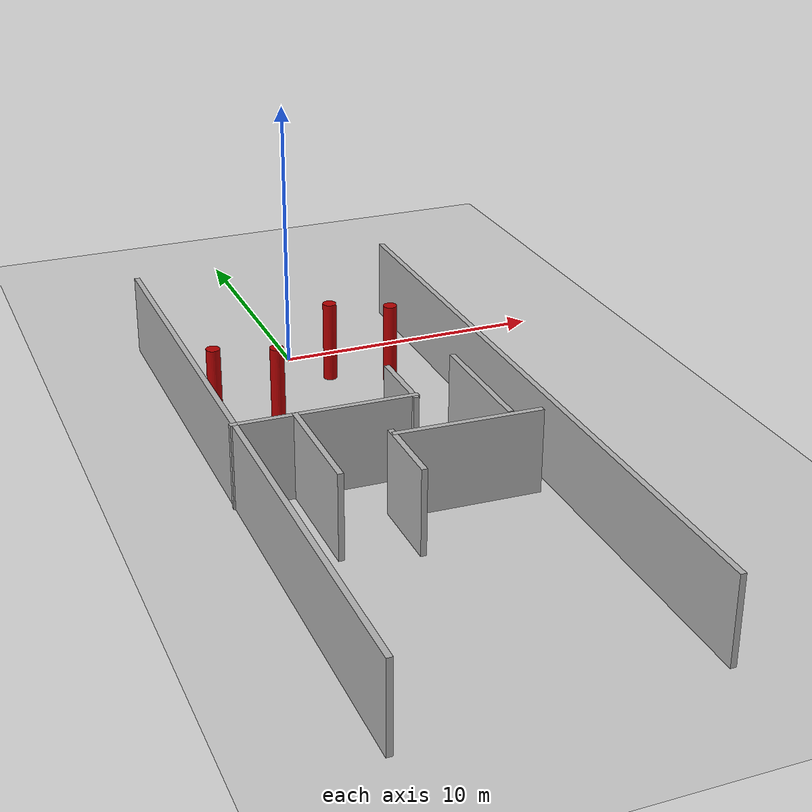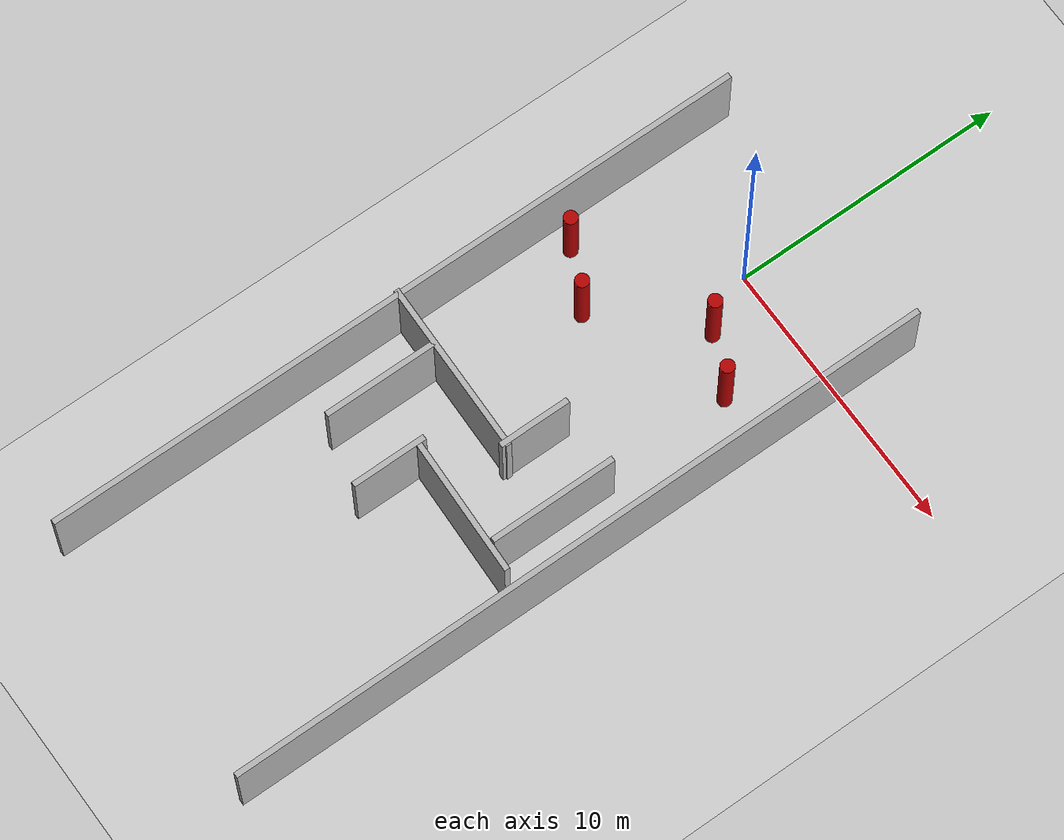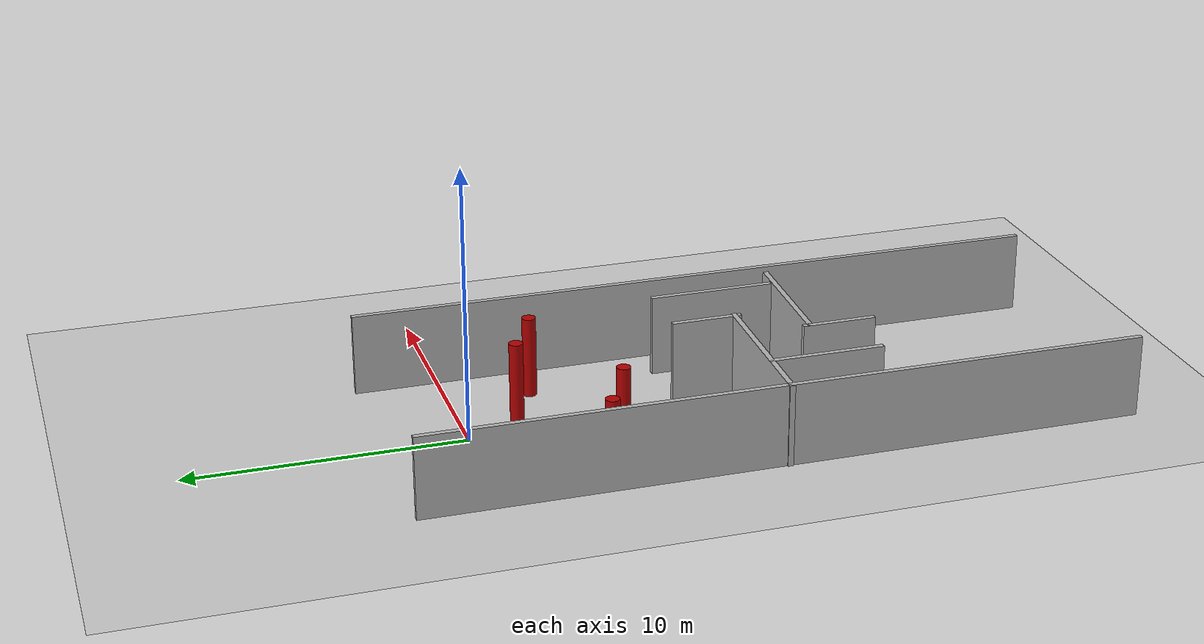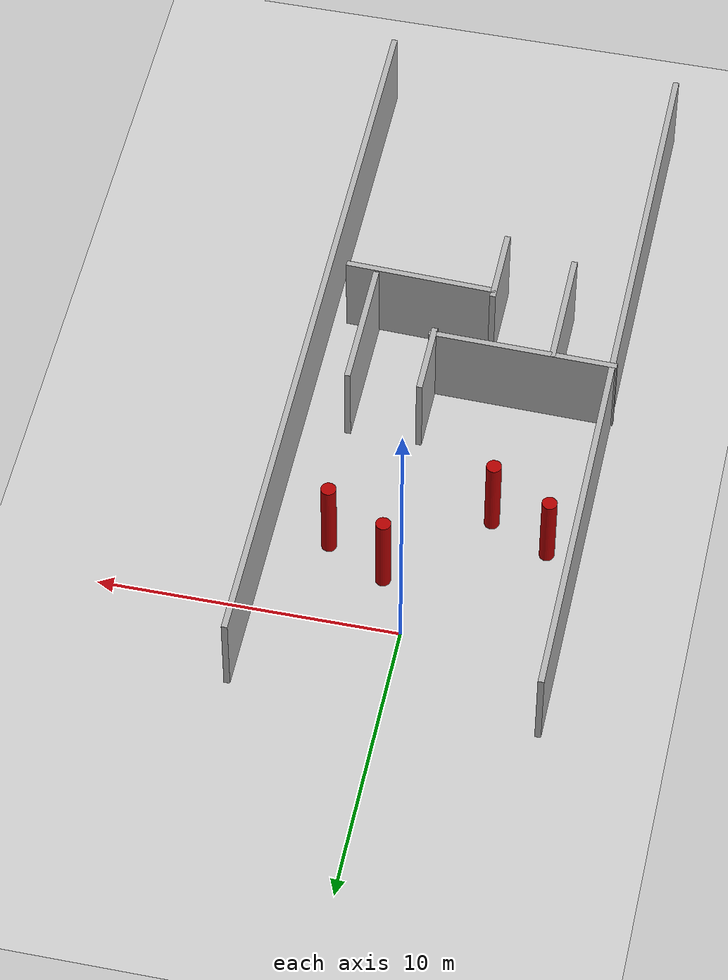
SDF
<sdf version="1.6">
 <world name="default">
  <light name="sun" type="directional">
   <pose>0 0 10 0 -0 0</pose>
   <diffuse>0.8 0.8 0.8 1</diffuse>
   <specular>0.2 0.2 0.2 1</specular>
   <attenuation>
    <range>1000</range>
    <constant>0.9</constant>
    <linear>0.01</linear>
    <quadratic>0.001</quadratic>
   </attenuation>
   <direction>-0.5 0.1 -0.9</direction>
  </light>
  <model name="ground_plane">
   <static>1</static>
   <link name="link">
    <collision name="collision">
     <geometry><plane><normal>0 0 1</normal><size>100 100</size></plane></geometry>
     <surface><friction><ode><mu>100</mu><mu2>50</mu2></ode></friction></surface>
    </collision>
    <visual name="visual">
     <cast_shadows>0</cast_shadows>
     <geometry><plane><normal>0 0 1</normal><size>100 100</size></plane></geometry>
     <material>
      <script><name>Gazebo/Grey</name><uri>file://media/materials/scripts/gazebo.material</uri></script>
     </material>
    </visual>
    <velocity_decay><linear>0</linear><angular>0</angular></velocity_decay>
   </link>
  </model>
  <physics name="default_physics" default="0" type="ode">
   <ode>
    <solver>
     <type>quick</type>
     <iters>10</iters>
     <sor>1.3</sor>
     <use_dynamic_moi_rescaling>0</use_dynamic_moi_rescaling>
    </solver>
    <constraints>
     <cfm>0</cfm>
     <erp>0.2</erp>
     <contact_max_correcting_vel>100</contact_max_correcting_vel>
     <contact_surface_layer>0.001</contact_surface_layer>
    </constraints>
   </ode>
   <max_step_size>0.004</max_step_size>
   <real_time_factor>1</real_time_factor>
   <real_time_update_rate>250</real_time_update_rate>
  </physics>
  <scene><ambient>0.4 0.4 0.4 1</ambient><background>0.7 0.7 0.7 1</background><shadows>1</shadows></scene>
  <spherical_coordinates>
   <surface_model>EARTH_WGS84</surface_model>
   <latitude_deg>0</latitude_deg>
   <longitude_deg>0</longitude_deg>
   <elevation>0</elevation>
   <heading_deg>0</heading_deg>
  </spherical_coordinates>
  <gravity>0 0 -9.8</gravity>
  <magnetic_field>6e-06 2.3e-05 -4.2e-05</magnetic_field>
  <atmosphere type="adiabatic"/>
  <model name="obstacle1">
   <link name="link">
    <inertial>
     <mass>1</mass>
     <inertia>
      <ixx>0.166667</ixx>
      <ixy>0</ixy>
      <ixz>0</ixz>
      <iyy>0.166667</iyy>
      <iyz>0</iyz>
      <izz>0.166667</izz>
     </inertia>
    </inertial>
    <visual name="visual">
     <geometry><box><size>0.2 4.6 3</size></box></geometry>
     <material>
      <script><name>baowen</name><uri>model://rover/materials/scripts/baowen.material</uri></script>
      <ambient>0.3 0.3 0.3 1</ambient>
      <diffuse>0.7 0.7 0.7 1</diffuse>
      <specular>0.01 0.01 0.01 1</specular>
      <emissive>0 0 0 1</emissive>
      <shader type="vertex"><normal_map>__default__</normal_map></shader>
     </material>
    </visual>
    <collision name="collision">
     <geometry><box><size>0.2 4.6 3</size></box></geometry>
     <surface>
      <friction>
       <ode><mu>1</mu><mu2>1</mu2><fdir1>0 0 0</fdir1><slip1>0</slip1><slip2>0</slip2></ode>
       <torsional>
        <coefficient>1</coefficient>
        <patch_radius>0</patch_radius>
        <surface_radius>0</surface_radius>
        <use_patch_radius>1</use_patch_radius>
        <ode><slip>0</slip></ode>
       </torsional>
      </friction>
      <bounce><restitution_coefficient>0</restitution_coefficient><threshold>1e+06</threshold></bounce>
      <contact>
       <collide_without_contact>0</collide_without_contact>
       <collide_without_contact_bitmask>1</collide_without_contact_bitmask>
       <collide_bitmask>1</collide_bitmask>
       <ode>
        <soft_cfm>0</soft_cfm>
        <soft_erp>0.2</soft_erp>
        <kp>1e+13</kp>
        <kd>1</kd>
        <max_vel>0.01</max_vel>
        <min_depth>0</min_depth>
       </ode>
       <bullet>
        <split_impulse>1</split_impulse>
        <split_impulse_penetration_threshold>-0.01</split_impulse_penetration_threshold>
        <soft_cfm>0</soft_cfm>
        <soft_erp>0.2</soft_erp>
        <kp>1e+13</kp>
        <kd>1</kd>
       </bullet>
      </contact>
     </surface>
    </collision>
   </link>
   <static>1</static>
   <pose>3.4 -10 1.5 0 -0 0</pose>
  </model>
  <model name="obstacle2">
   <link name="link">
    <inertial>
     <mass>1</mass>
     <inertia>
      <ixx>0.166667</ixx>
      <ixy>0</ixy>
      <ixz>0</ixz>
      <iyy>0.166667</iyy>
      <iyz>0</iyz>
      <izz>0.166667</izz>
     </inertia>
    </inertial>
    <visual name="visual">
     <geometry><box><size>0.2 5.10204 3</size></box></geometry>
     <material>
      <script><name>baowen</name><uri>model://rover/materials/scripts/baowen.material</uri></script>
      <ambient>0.3 0.3 0.3 1</ambient>
      <diffuse>0.7 0.7 0.7 1</diffuse>
      <specular>0.01 0.01 0.01 1</specular>
      <emissive>0 0 0 1</emissive>
      <shader type="vertex"><normal_map>__default__</normal_map></shader>
     </material>
    </visual>
    <collision name="collision">
     <geometry><box><size>0.2 5.10204 3</size></box></geometry>
     <surface>
      <friction>
       <ode><mu>1</mu><mu2>1</mu2><fdir1>0 0 0</fdir1><slip1>0</slip1><slip2>0</slip2></ode>
       <torsional>
        <coefficient>1</coefficient>
        <patch_radius>0</patch_radius>
        <surface_radius>0</surface_radius>
        <use_patch_radius>1</use_patch_radius>
        <ode><slip>0</slip></ode>
       </torsional>
      </friction>
      <bounce><restitution_coefficient>0</restitution_coefficient><threshold>1e+06</threshold></bounce>
      <contact>
       <collide_without_contact>0</collide_without_contact>
       <collide_without_contact_bitmask>1</collide_without_contact_bitmask>
       <collide_bitmask>1</collide_bitmask>
       <ode>
        <soft_cfm>0</soft_cfm>
        <soft_erp>0.2</soft_erp>
        <kp>1e+13</kp>
        <kd>1</kd>
        <max_vel>0.01</max_vel>
        <min_depth>0</min_depth>
       </ode>
       <bullet>
        <split_impulse>1</split_impulse>
        <split_impulse_penetration_threshold>-0.01</split_impulse_penetration_threshold>
        <soft_cfm>0</soft_cfm>
        <soft_erp>0.2</soft_erp>
        <kp>1e+13</kp>
        <kd>1</kd>
       </bullet>
      </contact>
     </surface>
    </collision>
   </link>
   <static>1</static>
   <pose>1.9 -12.4 1.5 0 -0 1.53692</pose>
  </model>
  <model name="obstacle3">
   <link name="link">
    <inertial>
     <mass>1</mass>
     <inertia>
      <ixx>0.166667</ixx>
      <ixy>0</ixy>
      <ixz>0</ixz>
      <iyy>0.166667</iyy>
      <iyz>0</iyz>
      <izz>0.166667</izz>
     </inertia>
    </inertial>
    <visual name="visual">
     <geometry><box><size>0.2 2.71566 3</size></box></geometry>
     <material>
      <script><name>baowen</name><uri>model://rover/materials/scripts/baowen.material</uri></script>
      <ambient>0.3 0.3 0.3 1</ambient>
      <diffuse>0.7 0.7 0.7 1</diffuse>
      <specular>0.01 0.01 0.01 1</specular>
      <emissive>0 0 0 1</emissive>
      <shader type="vertex"><normal_map>__default__</normal_map></shader>
     </material>
    </visual>
    <collision name="collision">
     <geometry><box><size>0.2 2.71566 3</size></box></geometry>
     <surface>
      <friction>
       <ode><mu>1</mu><mu2>1</mu2><fdir1>0 0 0</fdir1><slip1>0</slip1><slip2>0</slip2></ode>
       <torsional>
        <coefficient>1</coefficient>
        <patch_radius>0</patch_radius>
        <surface_radius>0</surface_radius>
        <use_patch_radius>1</use_patch_radius>
        <ode><slip>0</slip></ode>
       </torsional>
      </friction>
      <bounce><restitution_coefficient>0</restitution_coefficient><threshold>1e+06</threshold></bounce>
      <contact>
       <collide_without_contact>0</collide_without_contact>
       <collide_without_contact_bitmask>1</collide_without_contact_bitmask>
       <collide_bitmask>1</collide_bitmask>
       <ode>
        <soft_cfm>0</soft_cfm>
        <soft_erp>0.2</soft_erp>
        <kp>1e+13</kp>
        <kd>1</kd>
        <max_vel>0.01</max_vel>
        <min_depth>0</min_depth>
       </ode>
       <bullet>
        <split_impulse>1</split_impulse>
        <split_impulse_penetration_threshold>-0.01</split_impulse_penetration_threshold>
        <soft_cfm>0</soft_cfm>
        <soft_erp>0.2</soft_erp>
        <kp>1e+13</kp>
        <kd>1</kd>
       </bullet>
      </contact>
     </surface>
    </collision>
   </link>
   <static>1</static>
   <pose>-0.6 -13.4 1.5 0 -0 0</pose>
  </model>
  <model name="obstacle4">
   <link name="link">
    <inertial>
     <mass>1</mass>
     <inertia>
      <ixx>0.166667</ixx>
      <ixy>0</ixy>
      <ixz>0</ixz>
      <iyy>0.166667</iyy>
      <iyz>0</iyz>
      <izz>0.166667</izz>
     </inertia>
    </inertial>
    <visual name="visual">
     <geometry><box><size>0.2 6.31579 3</size></box></geometry>
     <material>
      <script><name>baowen</name><uri>model://rover/materials/scripts/baowen.material</uri></script>
      <ambient>0.3 0.3 0.3 1</ambient>
      <diffuse>0.7 0.7 0.7 1</diffuse>
      <specular>0.01 0.01 0.01 1</specular>
      <emissive>0 0 0 1</emissive>
      <shader type="vertex"><normal_map>__default__</normal_map></shader>
     </material>
    </visual>
    <collision name="collision">
     <geometry><box><size>0.2 6.31579 3</size></box></geometry>
     <surface>
      <friction>
       <ode><mu>1</mu><mu2>1</mu2><fdir1>0 0 0</fdir1><slip1>0</slip1><slip2>0</slip2></ode>
       <torsional>
        <coefficient>1</coefficient>
        <patch_radius>0</patch_radius>
        <surface_radius>0</surface_radius>
        <use_patch_radius>1</use_patch_radius>
        <ode><slip>0</slip></ode>
       </torsional>
      </friction>
      <bounce><restitution_coefficient>0</restitution_coefficient><threshold>1e+06</threshold></bounce>
      <contact>
       <collide_without_contact>0</collide_without_contact>
       <collide_without_contact_bitmask>1</collide_without_contact_bitmask>
       <collide_bitmask>1</collide_bitmask>
       <ode>
        <soft_cfm>0</soft_cfm>
        <soft_erp>0.2</soft_erp>
        <kp>1e+13</kp>
        <kd>1</kd>
        <max_vel>0.01</max_vel>
        <min_depth>0</min_depth>
       </ode>
       <bullet>
        <split_impulse>1</split_impulse>
        <split_impulse_penetration_threshold>-0.01</split_impulse_penetration_threshold>
        <soft_cfm>0</soft_cfm>
        <soft_erp>0.2</soft_erp>
        <kp>1e+13</kp>
        <kd>1</kd>
       </bullet>
      </contact>
     </surface>
    </collision>
   </link>
   <static>1</static>
   <pose>-2 -10 1.5 0 -0 1.54887</pose>
  </model>
  <model name="obstacle5">
   <link name="link">
    <inertial>
     <mass>1</mass>
     <inertia>
      <ixx>0.166667</ixx>
      <ixy>0</ixy>
      <ixz>0</ixz>
      <iyy>0.166667</iyy>
      <iyz>0</iyz>
      <izz>0.166667</izz>
     </inertia>
    </inertial>
    <visual name="visual">
     <geometry><box><size>0.2 2.58889 3</size></box></geometry>
     <material>
      <script><name>baowen</name><uri>model://rover/materials/scripts/baowen.material</uri></script>
      <ambient>0.3 0.3 0.3 1</ambient>
      <diffuse>0.7 0.7 0.7 1</diffuse>
      <specular>0.01 0.01 0.01 1</specular>
      <emissive>0 0 0 1</emissive>
      <shader type="vertex"><normal_map>__default__</normal_map></shader>
     </material>
    </visual>
    <collision name="collision">
     <geometry><box><size>0.2 2.58889 3</size></box></geometry>
     <surface>
      <friction>
       <ode><mu>1</mu><mu2>1</mu2><fdir1>0 0 0</fdir1><slip1>0</slip1><slip2>0</slip2></ode>
       <torsional>
        <coefficient>1</coefficient>
        <patch_radius>0</patch_radius>
        <surface_radius>0</surface_radius>
        <use_patch_radius>1</use_patch_radius>
        <ode><slip>0</slip></ode>
       </torsional>
      </friction>
      <bounce><restitution_coefficient>0</restitution_coefficient><threshold>1e+06</threshold></bounce>
      <contact>
       <collide_without_contact>0</collide_without_contact>
       <collide_without_contact_bitmask>1</collide_without_contact_bitmask>
       <collide_bitmask>1</collide_bitmask>
       <ode>
        <soft_cfm>0</soft_cfm>
        <soft_erp>0.2</soft_erp>
        <kp>1e+13</kp>
        <kd>1</kd>
        <max_vel>0.01</max_vel>
        <min_depth>0</min_depth>
       </ode>
       <bullet>
        <split_impulse>1</split_impulse>
        <split_impulse_penetration_threshold>-0.01</split_impulse_penetration_threshold>
        <soft_cfm>0</soft_cfm>
        <soft_erp>0.2</soft_erp>
        <kp>1e+13</kp>
        <kd>1</kd>
       </bullet>
      </contact>
     </surface>
    </collision>
   </link>
   <static>1</static>
   <pose>1 -9 1.5 0 -0 0</pose>
  </model>
  <model name="obstacle6">
   <link name="link">
    <inertial>
     <mass>1</mass>
     <inertia>
      <ixx>0.166667</ixx>
      <ixy>0</ixy>
      <ixz>0</ixz>
      <iyy>0.166667</iyy>
      <iyz>0</iyz>
      <izz>0.166667</izz>
     </inertia>
    </inertial>
    <visual name="visual">
     <geometry><box><size>0.2 4.21053 3</size></box></geometry>
     <material>
      <script><name>baowen</name><uri>model://rover/materials/scripts/baowen.material</uri></script>
      <ambient>0.3 0.3 0.3 1</ambient>
      <diffuse>0.7 0.7 0.7 1</diffuse>
      <specular>0.01 0.01 0.01 1</specular>
      <emissive>0 0 0 1</emissive>
      <shader type="vertex"><normal_map>__default__</normal_map></shader>
     </material>
    </visual>
    <collision name="collision">
     <geometry><box><size>0.2 4.21053 3</size></box></geometry>
     <surface>
      <friction>
       <ode><mu>1</mu><mu2>1</mu2><fdir1>0 0 0</fdir1><slip1>0</slip1><slip2>0</slip2></ode>
       <torsional>
        <coefficient>1</coefficient>
        <patch_radius>0</patch_radius>
        <surface_radius>0</surface_radius>
        <use_patch_radius>1</use_patch_radius>
        <ode><slip>0</slip></ode>
       </torsional>
      </friction>
      <bounce><restitution_coefficient>0</restitution_coefficient><threshold>1e+06</threshold></bounce>
      <contact>
       <collide_without_contact>0</collide_without_contact>
       <collide_without_contact_bitmask>1</collide_without_contact_bitmask>
       <collide_bitmask>1</collide_bitmask>
       <ode>
        <soft_cfm>0</soft_cfm>
        <soft_erp>0.2</soft_erp>
        <kp>1e+13</kp>
        <kd>1</kd>
        <max_vel>0.01</max_vel>
        <min_depth>0</min_depth>
       </ode>
       <bullet>
        <split_impulse>1</split_impulse>
        <split_impulse_penetration_threshold>-0.01</split_impulse_penetration_threshold>
        <soft_cfm>0</soft_cfm>
        <soft_erp>0.2</soft_erp>
        <kp>1e+13</kp>
        <kd>1</kd>
       </bullet>
      </contact>
     </surface>
    </collision>
   </link>
   <static>1</static>
   <pose>-3 -12 1.5 0 -0 0</pose>
  </model>
  <model name="left_wall">
   <link name="link">
    <inertial>
     <mass>1</mass>
     <inertia>
      <ixx>0.166667</ixx>
      <ixy>0</ixy>
      <ixz>0</ixz>
      <iyy>0.166667</iyy>
      <iyz>0</iyz>
      <izz>0.166667</izz>
     </inertia>
    </inertial>
    <self_collide>1</self_collide>
    <visual name="visual">
     <geometry><box><size>0.2 26 3</size></box></geometry>
     <material>
      <script><name>baowen</name><uri>model://rover/materials/scripts/baowen.material</uri></script>
      <ambient>0.3 0.3 0.3 1</ambient>
      <diffuse>0.7 0.7 0.7 1</diffuse>
      <specular>0.01 0.01 0.01 1</specular>
      <emissive>0 0 0 1</emissive>
      <shader type="vertex"><normal_map>__default__</normal_map></shader>
     </material>
    </visual>
    <collision name="collision">
     <geometry><box><size>0.2 26 3</size></box></geometry>
     <surface>
      <friction>
       <ode><mu>1</mu><mu2>1</mu2><fdir1>0 0 0</fdir1><slip1>0</slip1><slip2>0</slip2></ode>
       <torsional>
        <coefficient>1</coefficient>
        <patch_radius>0</patch_radius>
        <surface_radius>0</surface_radius>
        <use_patch_radius>1</use_patch_radius>
        <ode><slip>0</slip></ode>
       </torsional>
      </friction>
      <bounce><restitution_coefficient>0</restitution_coefficient><threshold>1e+06</threshold></bounce>
      <contact>
       <collide_without_contact>0</collide_without_contact>
       <collide_without_contact_bitmask>1</collide_without_contact_bitmask>
       <collide_bitmask>1</collide_bitmask>
       <ode>
        <soft_cfm>0</soft_cfm>
        <soft_erp>0.2</soft_erp>
        <kp>1e+13</kp>
        <kd>1</kd>
        <max_vel>0.01</max_vel>
        <min_depth>0</min_depth>
       </ode>
       <bullet>
        <split_impulse>1</split_impulse>
        <split_impulse_penetration_threshold>-0.01</split_impulse_penetration_threshold>
        <soft_cfm>0</soft_cfm>
        <soft_erp>0.2</soft_erp>
        <kp>1e+13</kp>
        <kd>1</kd>
       </bullet>
      </contact>
     </surface>
    </collision>
   </link>
   <static>1</static>
   <pose>5 -10 1.5 0 -0 0</pose>
  </model>
  <model name="right_wall">
   <link name="link">
    <inertial>
     <mass>1</mass>
     <inertia>
      <ixx>0.166667</ixx>
      <ixy>0</ixy>
      <ixz>0</ixz>
      <iyy>0.166667</iyy>
      <iyz>0</iyz>
      <izz>0.166667</izz>
     </inertia>
    </inertial>
    <visual name="visual">
     <geometry><box><size>0.2 26 3</size></box></geometry>
     <material>
      <script><name>baowen</name><uri>model://rover/materials/scripts/baowen.material</uri></script>
      <ambient>0.3 0.3 0.3 1</ambient>
      <diffuse>0.7 0.7 0.7 1</diffuse>
      <specular>0.01 0.01 0.01 1</specular>
      <emissive>0 0 0 1</emissive>
      <shader type="vertex"><normal_map>__default__</normal_map></shader>
     </material>
    </visual>
    <collision name="collision">
     <geometry><box><size>0.2 26 3</size></box></geometry>
     <surface>
      <friction>
       <ode><mu>1</mu><mu2>1</mu2><fdir1>0 0 0</fdir1><slip1>0</slip1><slip2>0</slip2></ode>
       <torsional>
        <coefficient>1</coefficient>
        <patch_radius>0</patch_radius>
        <surface_radius>0</surface_radius>
        <use_patch_radius>1</use_patch_radius>
        <ode><slip>0</slip></ode>
       </torsional>
      </friction>
      <bounce><restitution_coefficient>0</restitution_coefficient><threshold>1e+06</threshold></bounce>
      <contact>
       <collide_without_contact>0</collide_without_contact>
       <collide_without_contact_bitmask>1</collide_without_contact_bitmask>
       <collide_bitmask>1</collide_bitmask>
       <ode>
        <soft_cfm>0</soft_cfm>
        <soft_erp>0.2</soft_erp>
        <kp>1e+13</kp>
        <kd>1</kd>
        <max_vel>0.01</max_vel>
        <min_depth>0</min_depth>
       </ode>
       <bullet>
        <split_impulse>1</split_impulse>
        <split_impulse_penetration_threshold>-0.01</split_impulse_penetration_threshold>
        <soft_cfm>0</soft_cfm>
        <soft_erp>0.2</soft_erp>
        <kp>1e+13</kp>
        <kd>1</kd>
       </bullet>
      </contact>
     </surface>
    </collision>
   </link>
   <static>1</static>
   <pose>-5 -10 1.5 0 -0 0</pose>
  </model>
  <model name="box_3">
   <link name="link">
    <inertial>
     <mass>1</mass>
     <inertia><ixx>0.145833</ixx><ixy>0</ixy><ixz>0</ixz><iyy>0.145833</iyy><iyz>0</iyz><izz>0.125</izz></inertia>
    </inertial>
    <visual name="visual">
     <geometry><cylinder><radius>0.25</radius><length>3</length></cylinder></geometry>
     <material>
      <script><name>baowen</name><uri>model://rover/materials/scripts/baowen.material</uri></script>
      <ambient>0.3 0.3 0.3 1</ambient>
      <diffuse>0.7 0.0 0.0 1</diffuse>
      <specular>0.01 0.01 0.01 1</specular>
      <emissive>0 0 0 1</emissive>
      <shader type="vertex"><normal_map>__default__</normal_map></shader>
     </material>
    </visual>
    <collision name="collision">
     <geometry><cylinder><radius>0.25</radius><length>3</length></cylinder></geometry>
     <surface>
      <friction>
       <ode><mu>1</mu><mu2>1</mu2><fdir1>0 0 0</fdir1><slip1>0</slip1><slip2>0</slip2></ode>
       <torsional>
        <coefficient>1</coefficient>
        <patch_radius>0</patch_radius>
        <surface_radius>0</surface_radius>
        <use_patch_radius>1</use_patch_radius>
        <ode><slip>0</slip></ode>
       </torsional>
      </friction>
      <bounce><restitution_coefficient>0</restitution_coefficient><threshold>1e+06</threshold></bounce>
      <contact>
       <collide_without_contact>0</collide_without_contact>
       <collide_without_contact_bitmask>1</collide_without_contact_bitmask>
       <collide_bitmask>1</collide_bitmask>
       <ode>
        <soft_cfm>0</soft_cfm>
        <soft_erp>0.2</soft_erp>
        <kp>1e+13</kp>
        <kd>1</kd>
        <max_vel>0.01</max_vel>
        <min_depth>0</min_depth>
       </ode>
       <bullet>
        <split_impulse>1</split_impulse>
        <split_impulse_penetration_threshold>-0.01</split_impulse_penetration_threshold>
        <soft_cfm>0</soft_cfm>
        <soft_erp>0.2</soft_erp>
        <kp>1e+13</kp>
        <kd>1</kd>
       </bullet>
      </contact>
     </surface>
    </collision>
   </link>
   <static>0</static>
   <pose>-2.00287 -4.98937 1.49988 -3.8e-05 -1e-06 0.232553</pose>
  </model>
  <model name="box_4">
   <link name="link">
    <inertial>
     <mass>1</mass>
     <inertia><ixx>0.145833</ixx><ixy>0</ixy><ixz>0</ixz><iyy>0.145833</iyy><iyz>0</iyz><izz>0.125</izz></inertia>
    </inertial>
    <visual name="visual">
     <geometry><cylinder><radius>0.25</radius><length>2.73299</length></cylinder></geometry>
     <material>
      <script><name>baowen</name><uri>model://rover/materials/scripts/baowen.material</uri></script>
      <ambient>0.3 0.3 0.3 1</ambient>
      <diffuse>0.7 0.0 0.0 1</diffuse>
      <specular>0.01 0.01 0.01 1</specular>
      <emissive>0 0 0 1</emissive>
      <shader type="vertex"><normal_map>__default__</normal_map></shader>
     </material>
    </visual>
    <collision name="collision">
     <geometry><cylinder><radius>0.25</radius><length>3</length></cylinder></geometry>
     <surface>
      <friction>
       <ode><mu>1</mu><mu2>1</mu2><fdir1>0 0 0</fdir1><slip1>0</slip1><slip2>0</slip2></ode>
       <torsional>
        <coefficient>1</coefficient>
        <patch_radius>0</patch_radius>
        <surface_radius>0</surface_radius>
        <use_patch_radius>1</use_patch_radius>
        <ode><slip>0</slip></ode>
       </torsional>
      </friction>
      <bounce><restitution_coefficient>0</restitution_coefficient><threshold>1e+06</threshold></bounce>
      <contact>
       <collide_without_contact>0</collide_without_contact>
       <collide_without_contact_bitmask>1</collide_without_contact_bitmask>
       <collide_bitmask>1</collide_bitmask>
       <ode>
        <soft_cfm>0</soft_cfm>
        <soft_erp>0.2</soft_erp>
        <kp>1e+13</kp>
        <kd>1</kd>
        <max_vel>0.01</max_vel>
        <min_depth>0</min_depth>
       </ode>
       <bullet>
        <split_impulse>1</split_impulse>
        <split_impulse_penetration_threshold>-0.01</split_impulse_penetration_threshold>
        <soft_cfm>0</soft_cfm>
        <soft_erp>0.2</soft_erp>
        <kp>1e+13</kp>
        <kd>1</kd>
       </bullet>
      </contact>
     </surface>
    </collision>
   </link>
   <static>0</static>
   <pose>-4.00287 -3.98936 1.49988 -3.8e-05 -1e-06 0.232553</pose>
  </model>
  <model name="box_2">
   <link name="link">
    <inertial>
     <mass>1</mass>
     <inertia><ixx>0.145833</ixx><ixy>0</ixy><ixz>0</ixz><iyy>0.145833</iyy><iyz>0</iyz><izz>0.125</izz></inertia>
    </inertial>
    <visual name="visual">
     <geometry><cylinder><radius>0.25</radius><length>3</length></cylinder></geometry>
     <material>
      <script><name>baowen</name><uri>model://rover/materials/scripts/baowen.material</uri></script>
      <ambient>0.3 0.3 0.3 1</ambient>
      <diffuse>0.7 0.0 0.0 1</diffuse>
      <specular>0.01 0.01 0.01 1</specular>
      <emissive>0 0 0 1</emissive>
      <shader type="vertex"><normal_map>__default__</normal_map></shader>
     </material>
    </visual>
    <collision name="collision">
     <geometry><cylinder><radius>0.25</radius><length>3</length></cylinder></geometry>
     <surface>
      <friction>
       <ode><mu>1</mu><mu2>1</mu2><fdir1>0 0 0</fdir1><slip1>0</slip1><slip2>0</slip2></ode>
       <torsional>
        <coefficient>1</coefficient>
        <patch_radius>0</patch_radius>
        <surface_radius>0</surface_radius>
        <use_patch_radius>1</use_patch_radius>
        <ode><slip>0</slip></ode>
       </torsional>
      </friction>
      <bounce><restitution_coefficient>0</restitution_coefficient><threshold>1e+06</threshold></bounce>
      <contact>
       <collide_without_contact>0</collide_without_contact>
       <collide_without_contact_bitmask>1</collide_without_contact_bitmask>
       <collide_bitmask>1</collide_bitmask>
       <ode>
        <soft_cfm>0</soft_cfm>
        <soft_erp>0.2</soft_erp>
        <kp>1e+13</kp>
        <kd>1</kd>
        <max_vel>0.01</max_vel>
        <min_depth>0</min_depth>
       </ode>
       <bullet>
        <split_impulse>1</split_impulse>
        <split_impulse_penetration_threshold>-0.01</split_impulse_penetration_threshold>
        <soft_cfm>0</soft_cfm>
        <soft_erp>0.2</soft_erp>
        <kp>1e+13</kp>
        <kd>1</kd>
       </bullet>
      </contact>
     </surface>
    </collision>
   </link>
   <static>0</static>
   <pose>2.99713 -2.98936 1.49988 -3.8e-05 -1e-06 0.232553</pose>
  </model>
  <model name="box_1">
   <link name="link">
    <inertial>
     <mass>1</mass>
     <inertia><ixx>0.145833</ixx><ixy>0</ixy><ixz>0</ixz><iyy>0.145833</iyy><iyz>0</iyz><izz>0.125</izz></inertia>
    </inertial>
    <visual name="visual">
     <geometry><cylinder><radius>0.25</radius><length>3</length></cylinder></geometry>
     <material>
      <script><name>baowen</name><uri>model://rover/materials/scripts/baowen.material</uri></script>
      <ambient>0.3 0.3 0.3 1</ambient>
      <diffuse>0.7 0.0 0.0 1</diffuse>
      <specular>0.01 0.01 0.01 1</specular>
      <emissive>0 0 0 1</emissive>
      <shader type="vertex"><normal_map>__default__</normal_map></shader>
     </material>
    </visual>
    <collision name="collision">
     <geometry><cylinder><radius>0.25</radius><length>3</length></cylinder></geometry>
     <surface>
      <friction>
       <ode><mu>1</mu><mu2>1</mu2><fdir1>0 0 0</fdir1><slip1>0</slip1><slip2>0</slip2></ode>
       <torsional>
        <coefficient>1</coefficient>
        <patch_radius>0</patch_radius>
        <surface_radius>0</surface_radius>
        <use_patch_radius>1</use_patch_radius>
        <ode><slip>0</slip></ode>
       </torsional>
      </friction>
      <bounce><restitution_coefficient>0</restitution_coefficient><threshold>1e+06</threshold></bounce>
      <contact>
       <collide_without_contact>0</collide_without_contact>
       <collide_without_contact_bitmask>1</collide_without_contact_bitmask>
       <collide_bitmask>1</collide_bitmask>
       <ode>
        <soft_cfm>0</soft_cfm>
        <soft_erp>0.2</soft_erp>
        <kp>1e+13</kp>
        <kd>1</kd>
        <max_vel>0.01</max_vel>
        <min_depth>0</min_depth>
       </ode>
       <bullet>
        <split_impulse>1</split_impulse>
        <split_impulse_penetration_threshold>-0.01</split_impulse_penetration_threshold>
        <soft_cfm>0</soft_cfm>
        <soft_erp>0.2</soft_erp>
        <kp>1e+13</kp>
        <kd>1</kd>
       </bullet>
      </contact>
     </surface>
    </collision>
   </link>
   <static>0</static>
   <pose>0.997135 -1.98935 1.49988 -3.8e-05 -1e-06 0.232553</pose>
  </model>
  <model name="ihumanv1">
   <pose>2.73991 -9.35003 0 0 -0 0</pose>
   <scale>1 1 1</scale>
   <link name="link">
    <pose>2.73991 -9.35003 0 0 -0 0</pose>
    <velocity>0 0 0 0 -0 0</velocity>
    <acceleration>0 0 0 0 -0 0</acceleration>
    <wrench>0 0 0 0 -0 0</wrench>
   </link>
  </model>
  <model name="ihumanv1_0">
   <pose>0.896002 -6.55521 0 0 -0 2.1</pose>
   <scale>1 1 1</scale>
   <link name="link">
    <pose>0.896002 -6.55521 0 0 -0 0</pose>
    <velocity>0 0 0 0 -0 0</velocity>
    <acceleration>0 0 0 0 -0 0</acceleration>
    <wrench>0 0 0 0 -0 0</wrench>
   </link>
  </model>
  <model name="ihumanv1_1">
   <pose>-0.039774 -10.6673 0 0 -0 0.85</pose>
   <scale>1 1 1</scale>
   <link name="link">
    <pose>-0.039774 -10.6673 0 0 -0 0</pose>
    <velocity>0 0 0 0 -0 0</velocity>
    <acceleration>0 0 0 0 -0 0</acceleration>
    <wrench>0 0 0 0 -0 0</wrench>
   </link>
  </model>
  <model name="ihumanv1_2">
   <pose>-0.022578 -10.9423 0 0 -0 0</pose>
   <scale>1 1 1</scale>
   <link name="link">
    <pose>-0.022578 -10.9423 0 0 -0 0</pose>
    <velocity>0 0 0 0 -0 0</velocity>
    <acceleration>0 0 0 0 -0 0</acceleration>
    <wrench>0 0 0 0 -0 0</wrench>
   </link>
  </model>
  <model name="ihumanv1_3">
   <pose>3.54982 -12.6741 0 0 -0 1.75</pose>
   <scale>1 1 1</scale>
   <link name="link">
    <pose>3.54982 -12.6741 0 0 -0 0</pose>
    <velocity>0 0 0 0 -0 0</velocity>
    <acceleration>0 0 0 0 -0 0</acceleration>
    <wrench>0 0 0 0 -0 0</wrench>
   </link>
  </model>
  <model name="ihumanv1_4">
   <pose>-2.84179 -15.7592 0 0 -0 2.15</pose>
   <scale>1 1 1</scale>
   <link name="link">
    <pose>2.10277 -14.8976 0 0 -0 0</pose>
    <velocity>0 0 0 0 -0 0</velocity>
    <acceleration>0 0 0 0 -0 0</acceleration>
    <wrench>0 0 0 0 -0 0</wrench>
   </link>
  </model>
  <model name="ihumanv1_5">
   <pose>-0.544081 -8.83867 0 0 -0 2.15</pose>
   <scale>1 1 1</scale>
   <link name="link">
    <pose>-0.544081 -8.83867 0 0 -0 2.15</pose>
    <velocity>0 0 0 0 -0 0</velocity>
    <acceleration>0 0 0 0 -0 0</acceleration>
    <wrench>0 0 0 0 -0 0</wrench>
   </link>
  </model>
 </world>
</sdf>
